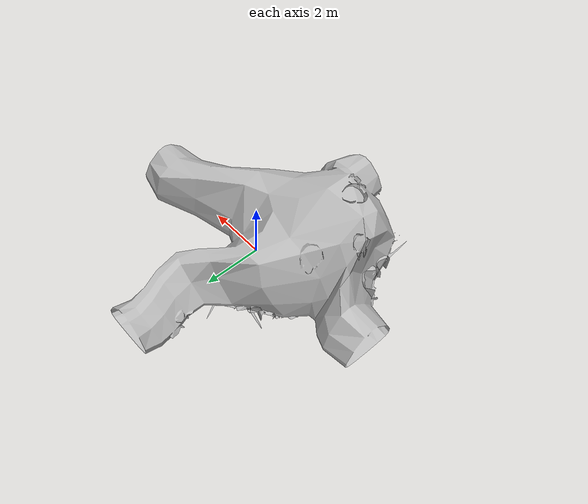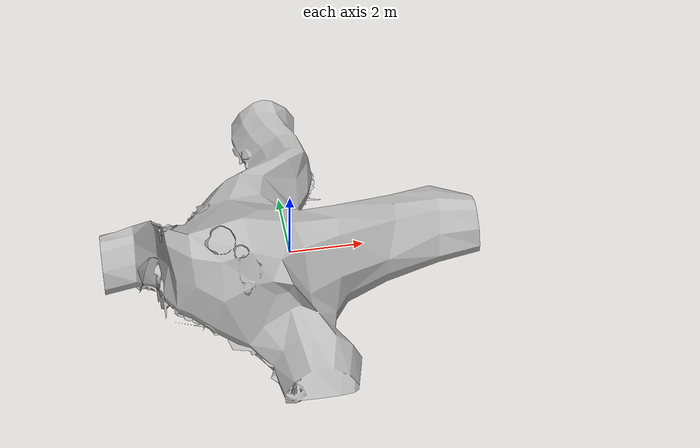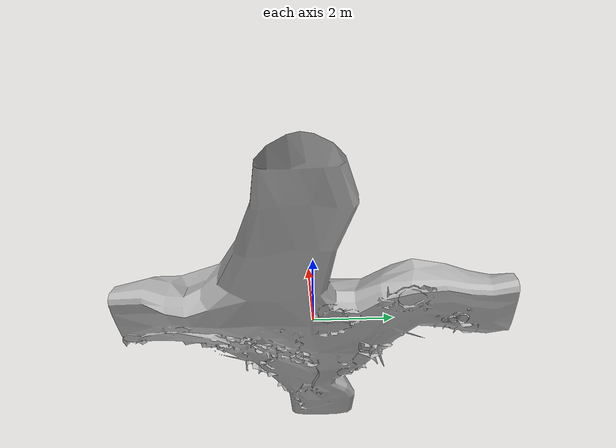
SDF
<?xml version="1.0"?>
<sdf version="1.6">
  <model name="cave_4way">
    <static>true</static>
    <link name="base">
      <pose>0 0 0 0 0 0</pose>
      <collision name="base_collision">
        <pose>0 0 0 0 0 0</pose>
        <geometry>
          <mesh>
            <uri>model://cave_4way/meshes/cave_4way_collider.dae</uri>
          </mesh>
        </geometry>
      </collision>
      <visual name="base_visual">
        <pose>0 0 0 0 0 0</pose>
        <cast_shadows>false</cast_shadows>
        <geometry>
          <mesh>
            <uri>model://cave_4way/meshes/cave_4way.dae</uri>
          </mesh>
        </geometry>
      </visual>
    </link>
  </model>
</sdf>
